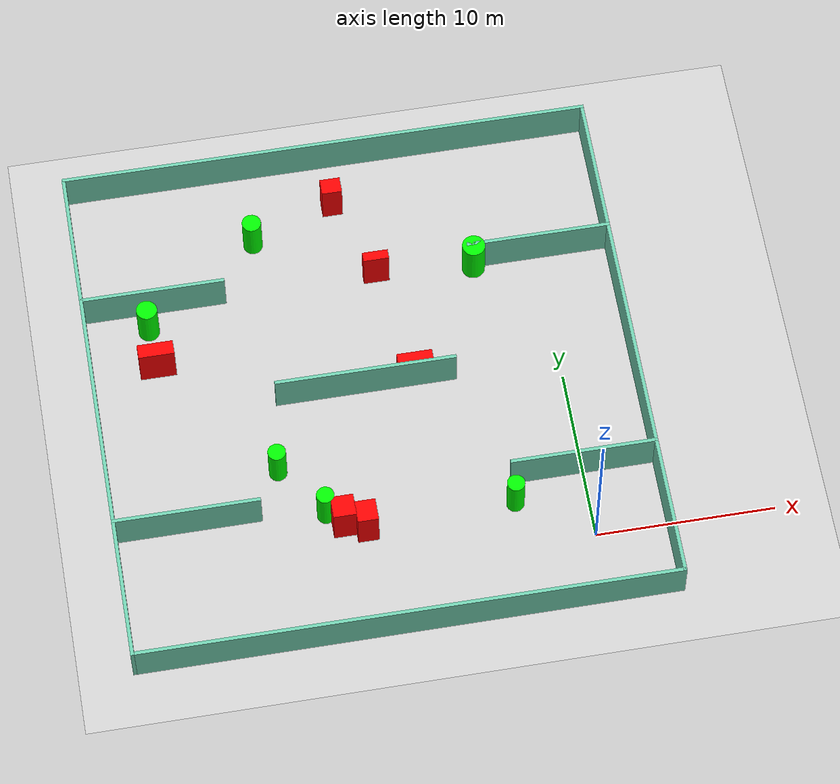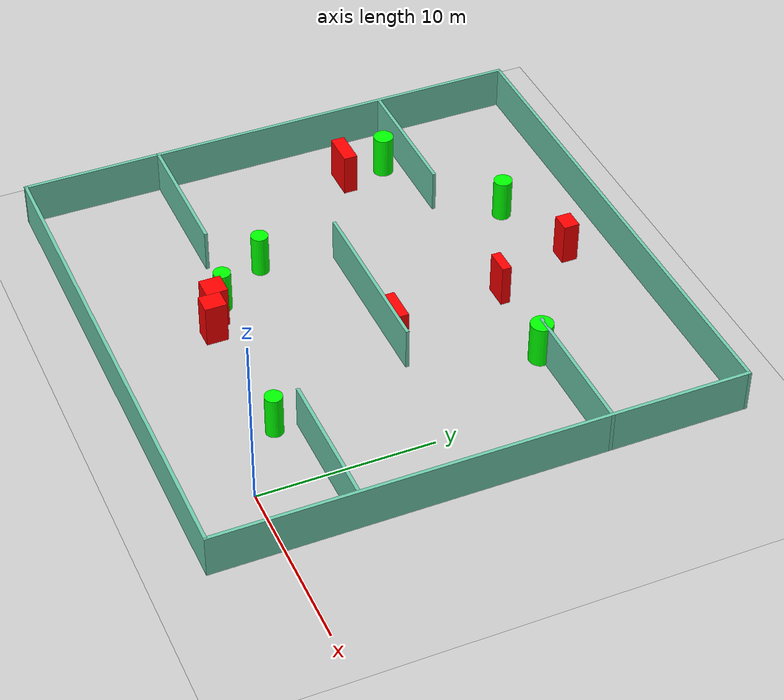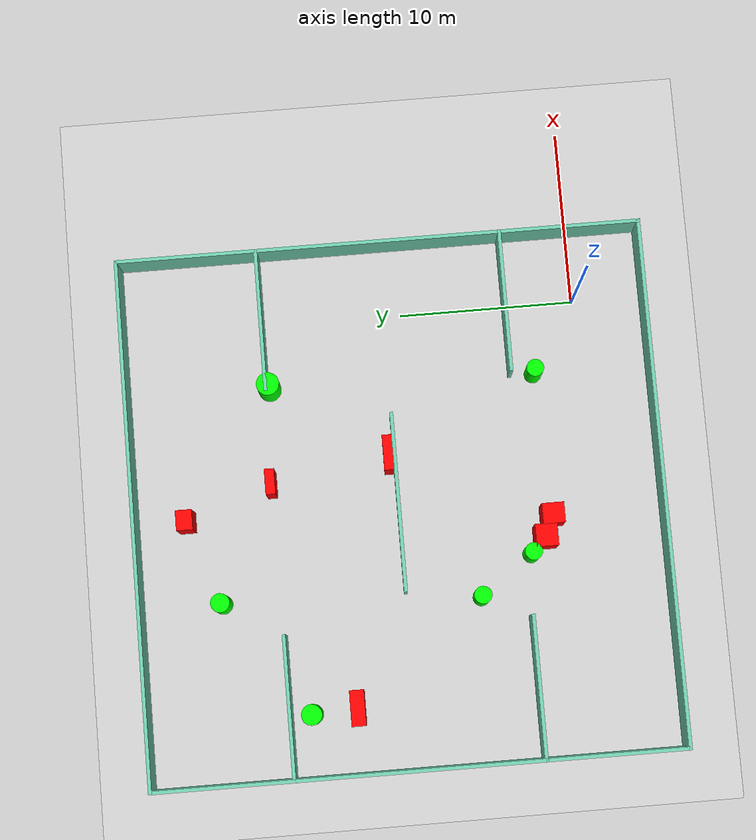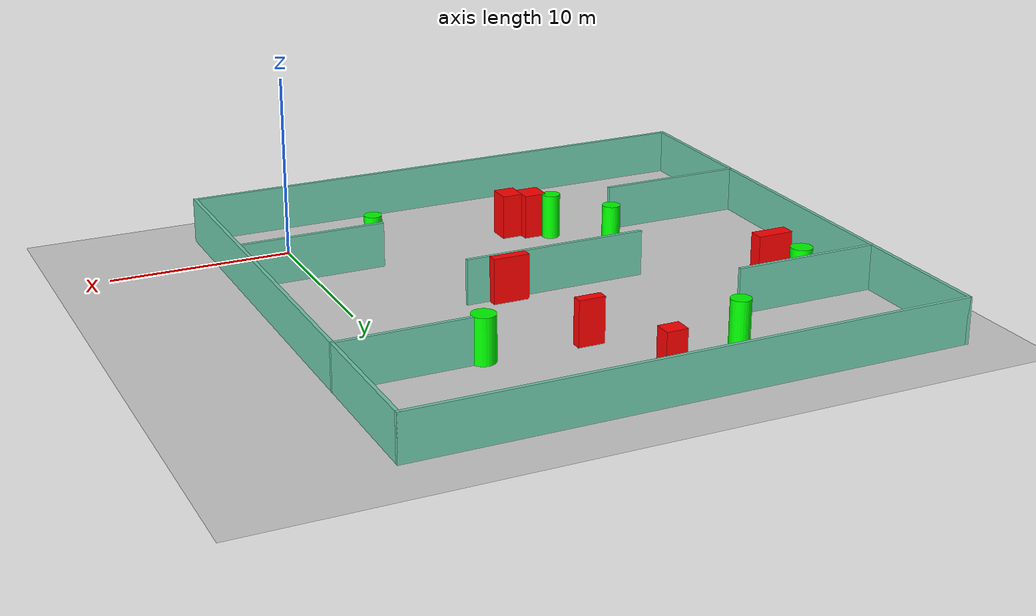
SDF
<sdf version="1.7">
 <world name="default">
  <light name="sun" type="directional">
   <pose>0 0 10 0 -0 0</pose>
   <diffuse>0.8 0.8 0.8 1</diffuse>
   <specular>0.2 0.2 0.2 1</specular>
   <attenuation>
    <range>1000</range>
    <constant>0.9</constant>
    <linear>0.01</linear>
    <quadratic>0.001</quadratic>
   </attenuation>
   <direction>-0.5 0.1 -0.9</direction>
   <spot><inner_angle>0</inner_angle><outer_angle>0</outer_angle><falloff>0</falloff></spot>
  </light>
  <model name="ground_plane">
   <static>1</static>
   <link name="link">
    <collision name="collision">
     <geometry><plane><normal>0 0 1</normal><size>100 100</size></plane></geometry>
     <surface>
      <contact><collide_bitmask>65535</collide_bitmask></contact>
      <friction><ode><mu>100</mu><mu2>50</mu2></ode></friction>
     </surface>
    </collision>
    <visual name="visual">
     <cast_shadows>0</cast_shadows>
     <geometry><plane><normal>0 0 1</normal><size>100 100</size></plane></geometry>
     <material>
      <script><uri>file://media/materials/scripts/gazebo.material</uri><name>Gazebo/Grey</name></script>
     </material>
    </visual>
   </link>
  </model>
  <gravity>0 0 -9.8</gravity>
  <magnetic_field>6e-06 2.3e-05 -4.2e-05</magnetic_field>
  <atmosphere type="adiabatic"/>
  <physics type="ode">
   <max_step_size>0.001</max_step_size>
   <real_time_factor>1</real_time_factor>
   <real_time_update_rate>1000</real_time_update_rate>
  </physics>
  <scene><ambient>0.4 0.4 0.4 1</ambient><background>0.7 0.7 0.7 1</background><shadows>1</shadows></scene>
  <spherical_coordinates>
   <surface_model>EARTH_WGS84</surface_model>
   <latitude_deg>0</latitude_deg>
   <longitude_deg>0</longitude_deg>
   <elevation>0</elevation>
   <heading_deg>0</heading_deg>
  </spherical_coordinates>
  <model name="my_base_walls">
   <link name="Wall_10">
    <collision name="Wall_10_Collision">
     <geometry><box><size>8.2 0.2 2.5</size></box></geometry>
     <pose>0 0 1.25 0 -0 0</pose>
    </collision>
    <visual name="Wall_10_Visual">
     <pose>0 0 1.25 0 -0 0</pose>
     <geometry><box><size>8.2 0.2 2.5</size></box></geometry>
     <material>
      <script><uri>file://media/materials/scripts/gazebo.material</uri><name>Gazebo/Grey</name></script>
      <ambient>0.435294 0.796078 0.67451 1</ambient>
     </material>
     <meta><layer>0</layer></meta>
    </visual>
    <pose>-11 -7 0 0 -0 0</pose>
   </link>
   <link name="Wall_12">
    <collision name="Wall_12_Collision">
     <geometry><box><size>8.2 0.2 2.5</size></box></geometry>
     <pose>0 0 1.25 0 -0 0</pose>
    </collision>
    <visual name="Wall_12_Visual">
     <pose>0 0 1.25 0 -0 0</pose>
     <geometry><box><size>8.2 0.2 2.5</size></box></geometry>
     <material>
      <script><uri>file://media/materials/scripts/gazebo.material</uri><name>Gazebo/Grey</name></script>
      <ambient>0.435294 0.796078 0.67451 1</ambient>
     </material>
     <meta><layer>0</layer></meta>
    </visual>
    <pose>-11 7 0 0 -0 0</pose>
   </link>
   <link name="Wall_14">
    <collision name="Wall_14_Collision">
     <geometry><box><size>8.2 0.2 2.5</size></box></geometry>
     <pose>0 0 1.25 0 -0 0</pose>
    </collision>
    <visual name="Wall_14_Visual">
     <pose>0 0 1.25 0 -0 0</pose>
     <geometry><box><size>8.2 0.2 2.5</size></box></geometry>
     <material>
      <script><uri>file://media/materials/scripts/gazebo.material</uri><name>Gazebo/Grey</name></script>
      <ambient>0.435294 0.796078 0.67451 1</ambient>
     </material>
     <meta><layer>0</layer></meta>
    </visual>
    <pose>11 7 0 0 -0 3.14159</pose>
   </link>
   <link name="Wall_16">
    <collision name="Wall_16_Collision">
     <geometry><box><size>10.2 0.2 2.5</size></box></geometry>
     <pose>0 0 1.25 0 -0 0</pose>
    </collision>
    <visual name="Wall_16_Visual">
     <pose>0 0 1.25 0 -0 0</pose>
     <geometry><box><size>10.2 0.2 2.5</size></box></geometry>
     <material>
      <script><uri>file://media/materials/scripts/gazebo.material</uri><name>Gazebo/Grey</name></script>
      <ambient>0.435294 0.796078 0.67451 1</ambient>
     </material>
     <meta><layer>0</layer></meta>
    </visual>
    <pose>0 0 0 0 -0 3.14159</pose>
   </link>
   <link name="Wall_2">
    <collision name="Wall_2_Collision">
     <geometry><box><size>30.2 0.2 2.5</size></box></geometry>
     <pose>0 0 1.25 0 -0 0</pose>
    </collision>
    <visual name="Wall_2_Visual">
     <pose>0 0 1.25 0 -0 0</pose>
     <geometry><box><size>30.2 0.2 2.5</size></box></geometry>
     <material>
      <script><uri>file://media/materials/scripts/gazebo.material</uri><name>Gazebo/Grey</name></script>
      <ambient>0.435294 0.796078 0.67451 1</ambient>
     </material>
     <meta><layer>0</layer></meta>
    </visual>
    <pose>0 -15 0 0 -0 3.14159</pose>
   </link>
   <link name="Wall_3">
    <collision name="Wall_3_Collision">
     <geometry><box><size>30.2 0.2 2.5</size></box></geometry>
     <pose>0 0 1.25 0 -0 0</pose>
    </collision>
    <visual name="Wall_3_Visual">
     <pose>0 0 1.25 0 -0 0</pose>
     <geometry><box><size>30.2 0.2 2.5</size></box></geometry>
     <material>
      <script><uri>file://media/materials/scripts/gazebo.material</uri><name>Gazebo/Grey</name></script>
      <ambient>0.435294 0.796078 0.67451 1</ambient>
     </material>
     <meta><layer>0</layer></meta>
    </visual>
    <pose>-15 0 0 0 -0 1.5708</pose>
   </link>
   <link name="Wall_4">
    <collision name="Wall_4_Collision">
     <geometry><box><size>30.2 0.2 2.5</size></box></geometry>
     <pose>0 0 1.25 0 -0 0</pose>
    </collision>
    <visual name="Wall_4_Visual">
     <pose>0 0 1.25 0 -0 0</pose>
     <geometry><box><size>30.2 0.2 2.5</size></box></geometry>
     <material>
      <script><uri>file://media/materials/scripts/gazebo.material</uri><name>Gazebo/Grey</name></script>
      <ambient>0.435294 0.796078 0.67451 1</ambient>
     </material>
     <meta><layer>0</layer></meta>
    </visual>
    <pose>0 15 0 0 -0 0</pose>
   </link>
   <link name="Wall_6">
    <collision name="Wall_6_Collision">
     <geometry><box><size>30.2 0.2 2.5</size></box></geometry>
     <pose>0 0 1.25 0 -0 0</pose>
    </collision>
    <visual name="Wall_6_Visual">
     <pose>0 0 1.25 0 -0 0</pose>
     <geometry><box><size>30.2 0.2 2.5</size></box></geometry>
     <material>
      <script><uri>file://media/materials/scripts/gazebo.material</uri><name>Gazebo/Grey</name></script>
      <ambient>0.435294 0.796078 0.67451 1</ambient>
     </material>
     <meta><layer>0</layer></meta>
    </visual>
    <pose>15 0 0 0 -0 1.5708</pose>
   </link>
   <link name="Wall_8">
    <collision name="Wall_8_Collision">
     <geometry><box><size>8.2 0.2 2.5</size></box></geometry>
     <pose>0 0 1.25 0 -0 0</pose>
    </collision>
    <visual name="Wall_8_Visual">
     <pose>0 0 1.25 0 -0 0</pose>
     <geometry><box><size>8.2 0.2 2.5</size></box></geometry>
     <material>
      <script><uri>file://media/materials/scripts/gazebo.material</uri><name>Gazebo/Grey</name></script>
      <ambient>0.435294 0.796078 0.67451 1</ambient>
     </material>
     <meta><layer>0</layer></meta>
    </visual>
    <pose>11 -7 0 0 -0 3.14159</pose>
   </link>
   <static>1</static>
   <pose>-11 11 0 0 -0 0</pose>
  </model>
  <model name="cylinder1">
   <static>1</static>
   <link name="link">
    <inertial>
     <mass>1</mass>
     <inertia><ixx>0.5</ixx><ixy>0</ixy><ixz>0</ixz><iyy>0.5</iyy><iyz>0</iyz><izz>1</izz></inertia>
    </inertial>
    <collision name="collision">
     <geometry><cylinder><radius>0.5887017556690679</radius><length>2.5</length></cylinder></geometry>
    </collision>
    <visual name="visual">
     <geometry><cylinder><radius>0.5887017556690679</radius><length>2.5</length></cylinder></geometry>
     <material>
      <ambient>0 1 0 1</ambient>
      <diffuse>0 1 0 1</diffuse>
      <specular>0.1 0.1 0.1 1</specular>
      <emissive>0 0 0 0</emissive>
     </material>
    </visual>
   </link>
   <pose>-22.45757264476327 16.768235837421482 1.25 0 0 0</pose>
  </model>
  <model name="cylinder2">
   <static>1</static>
   <link name="link">
    <inertial>
     <mass>1</mass>
     <inertia><ixx>0.5</ixx><ixy>0</ixy><ixz>0</ixz><iyy>0.5</iyy><iyz>0</iyz><izz>1</izz></inertia>
    </inertial>
    <collision name="collision">
     <geometry><cylinder><radius>0.50276789608958</radius><length>2.5</length></cylinder></geometry>
    </collision>
    <visual name="visual">
     <geometry><cylinder><radius>0.50276789608958</radius><length>2.5</length></cylinder></geometry>
     <material>
      <ambient>0 1 0 1</ambient>
      <diffuse>0 1 0 1</diffuse>
      <specular>0.1 0.1 0.1 1</specular>
      <emissive>0 0 0 0</emissive>
     </material>
    </visual>
   </link>
   <pose>-16.620995335261885 6.698448272050893 1.25 0 0 0</pose>
  </model>
  <model name="cylinder3">
   <static>1</static>
   <link name="link">
    <inertial>
     <mass>1</mass>
     <inertia><ixx>0.5</ixx><ixy>0</ixy><ixz>0</ixz><iyy>0.5</iyy><iyz>0</iyz><izz>1</izz></inertia>
    </inertial>
    <collision name="collision">
     <geometry><cylinder><radius>0.6517312632671698</radius><length>2.5</length></cylinder></geometry>
    </collision>
    <visual name="visual">
     <geometry><cylinder><radius>0.6517312632671698</radius><length>2.5</length></cylinder></geometry>
     <material>
      <ambient>0 1 0 1</ambient>
      <diffuse>0 1 0 1</diffuse>
      <specular>0.1 0.1 0.1 1</specular>
      <emissive>0 0 0 0</emissive>
     </material>
    </visual>
   </link>
   <pose>-3.723268702406756 17.8545900118658 1.25 0 0 0</pose>
  </model>
  <model name="cylinder4">
   <static>1</static>
   <link name="link">
    <inertial>
     <mass>1</mass>
     <inertia><ixx>0.5</ixx><ixy>0</ixy><ixz>0</ixz><iyy>0.5</iyy><iyz>0</iyz><izz>1</izz></inertia>
    </inertial>
    <collision name="collision">
     <geometry><cylinder><radius>0.5416382544300693</radius><length>2.5</length></cylinder></geometry>
    </collision>
    <visual name="visual">
     <geometry><cylinder><radius>0.5416382544300693</radius><length>2.5</length></cylinder></geometry>
     <material>
      <ambient>0 1 0 1</ambient>
      <diffuse>0 1 0 1</diffuse>
      <specular>0.1 0.1 0.1 1</specular>
      <emissive>0 0 0 0</emissive>
     </material>
    </visual>
   </link>
   <pose>-15.862377980061478 21.407381121257973 1.25 0 0 0</pose>
  </model>
  <model name="cylinder5">
   <static>1</static>
   <link name="link">
    <inertial>
     <mass>1</mass>
     <inertia><ixx>0.5</ixx><ixy>0</ixy><ixz>0</ixz><iyy>0.5</iyy><iyz>0</iyz><izz>1</izz></inertia>
    </inertial>
    <collision name="collision">
     <geometry><cylinder><radius>0.4985575306694824</radius><length>2.5</length></cylinder></geometry>
    </collision>
    <visual name="visual">
     <geometry><cylinder><radius>0.4985575306694824</radius><length>2.5</length></cylinder></geometry>
     <material>
      <ambient>0 1 0 1</ambient>
      <diffuse>0 1 0 1</diffuse>
      <specular>0.1 0.1 0.1 1</specular>
      <emissive>0 0 0 0</emissive>
     </material>
    </visual>
   </link>
   <pose>-14.41170396140367 3.651329123594917 1.25 0 0 0</pose>
  </model>
  <model name="cylinder6">
   <static>1</static>
   <link name="link">
    <inertial>
     <mass>1</mass>
     <inertia><ixx>0.5</ixx><ixy>0</ixy><ixz>0</ixz><iyy>0.5</iyy><iyz>0</iyz><izz>1</izz></inertia>
    </inertial>
    <collision name="collision">
     <geometry><cylinder><radius>0.49491539519113215</radius><length>2.5</length></cylinder></geometry>
    </collision>
    <visual name="visual">
     <geometry><cylinder><radius>0.49491539519113215</radius><length>2.5</length></cylinder></geometry>
     <material>
      <ambient>0 1 0 1</ambient>
      <diffuse>0 1 0 1</diffuse>
      <specular>0.1 0.1 0.1 1</specular>
      <emissive>0 0 0 0</emissive>
     </material>
    </visual>
   </link>
   <pose>-4.039442408213713 2.6397085166022407 1.25 0 0 0</pose>
  </model>
  <model name="box1">
   <static>1</static>
   <link name="link">
    <inertial>
     <mass>1</mass>
     <inertia><ixx>0.083</ixx><ixy>0</ixy><ixz>0</ixz><iyy>0.083</iyy><iyz>0</iyz><izz>0.083</izz></inertia>
    </inertial>
    <collision name="collision">
     <geometry><box><size>1.1477744429842316 0.9283589141550818 2.5</size></box></geometry>
    </collision>
    <visual name="visual">
     <geometry><box><size>1.1477744429842316 0.9283589141550818 2.5</size></box></geometry>
     <material>
      <ambient>1 0 0 1</ambient>
      <diffuse>1 0 0 1</diffuse>
      <specular>0.1 0.1 0.1 1</specular>
      <emissive>0 0 0 0</emissive>
     </material>
    </visual>
    <sensor name="my_contact" type="contact">
     <contact><collision>box_collision</collision><topic>__default_topic__</topic></contact>
    </sensor>
   </link>
   <pose>-11.061152053571195 23.105313741312635 1.25 0 0 0</pose>
  </model>
  <model name="box2">
   <static>1</static>
   <link name="link">
    <inertial>
     <mass>1</mass>
     <inertia><ixx>0.083</ixx><ixy>0</ixy><ixz>0</ixz><iyy>0.083</iyy><iyz>0</iyz><izz>0.083</izz></inertia>
    </inertial>
    <collision name="collision">
     <geometry><box><size>1.9994121654644492 0.551451345494585 2.5</size></box></geometry>
    </collision>
    <visual name="visual">
     <geometry><box><size>1.9994121654644492 0.551451345494585 2.5</size></box></geometry>
     <material>
      <ambient>1 0 0 1</ambient>
      <diffuse>1 0 0 1</diffuse>
      <specular>0.1 0.1 0.1 1</specular>
      <emissive>0 0 0 0</emissive>
     </material>
    </visual>
    <sensor name="my_contact" type="contact">
     <contact><collision>box_collision</collision><topic>__default_topic__</topic></contact>
    </sensor>
   </link>
   <pose>-8.170692592609175 11.36497144501488 1.25 0 0 0</pose>
  </model>
  <model name="box3">
   <static>1</static>
   <link name="link">
    <inertial>
     <mass>1</mass>
     <inertia><ixx>0.083</ixx><ixy>0</ixy><ixz>0</ixz><iyy>0.083</iyy><iyz>0</iyz><izz>0.083</izz></inertia>
    </inertial>
    <collision name="collision">
     <geometry><box><size>1.2750563349762825 1.2563382112909665 2.5</size></box></geometry>
    </collision>
    <visual name="visual">
     <geometry><box><size>1.2750563349762825 1.2563382112909665 2.5</size></box></geometry>
     <material>
      <ambient>1 0 0 1</ambient>
      <diffuse>1 0 0 1</diffuse>
      <specular>0.1 0.1 0.1 1</specular>
      <emissive>0 0 0 0</emissive>
     </material>
    </visual>
    <sensor name="my_contact" type="contact">
     <contact><collision>box_collision</collision><topic>__default_topic__</topic></contact>
    </sensor>
   </link>
   <pose>-13.544996868862054 2.838020098197017 1.25 0 0 0</pose>
  </model>
  <model name="box4">
   <static>1</static>
   <link name="link">
    <inertial>
     <mass>1</mass>
     <inertia><ixx>0.083</ixx><ixy>0</ixy><ixz>0</ixz><iyy>0.083</iyy><iyz>0</iyz><izz>0.083</izz></inertia>
    </inertial>
    <collision name="collision">
     <geometry><box><size>1.1607708171552629 1.2586276623115409 2.5</size></box></geometry>
    </collision>
    <visual name="visual">
     <geometry><box><size>1.1607708171552629 1.2586276623115409 2.5</size></box></geometry>
     <material>
      <ambient>1 0 0 1</ambient>
      <diffuse>1 0 0 1</diffuse>
      <specular>0.1 0.1 0.1 1</specular>
      <emissive>0 0 0 0</emissive>
     </material>
    </visual>
    <sensor name="my_contact" type="contact">
     <contact><collision>box_collision</collision><topic>__default_topic__</topic></contact>
    </sensor>
   </link>
   <pose>-12.344984674869504 2.3512347838834353 1.25 0 0 0</pose>
  </model>
  <model name="box5">
   <static>1</static>
   <link name="link">
    <inertial>
     <mass>1</mass>
     <inertia><ixx>0.083</ixx><ixy>0</ixy><ixz>0</ixz><iyy>0.083</iyy><iyz>0</iyz><izz>0.083</izz></inertia>
    </inertial>
    <collision name="collision">
     <geometry><box><size>1.4535093223400042 0.5518298493057661 2.5</size></box></geometry>
    </collision>
    <visual name="visual">
     <geometry><box><size>1.4535093223400042 0.5518298493057661 2.5</size></box></geometry>
     <material>
      <ambient>1 0 0 1</ambient>
      <diffuse>1 0 0 1</diffuse>
      <specular>0.1 0.1 0.1 1</specular>
      <emissive>0 0 0 0</emissive>
     </material>
    </visual>
    <sensor name="my_contact" type="contact">
     <contact><collision>box_collision</collision><topic>__default_topic__</topic></contact>
    </sensor>
   </link>
   <pose>-9.286903461825526 18.136970966292555 1.25 0 0 0</pose>
  </model>
  <model name="box6">
   <static>1</static>
   <link name="link">
    <inertial>
     <mass>1</mass>
     <inertia><ixx>0.083</ixx><ixy>0</ixy><ixz>0</ixz><iyy>0.083</iyy><iyz>0</iyz><izz>0.083</izz></inertia>
    </inertial>
    <collision name="collision">
     <geometry><box><size>2.0156339616909853 0.8152996024513262 2.5</size></box></geometry>
    </collision>
    <visual name="visual">
     <geometry><box><size>2.0156339616909853 0.8152996024513262 2.5</size></box></geometry>
     <material>
      <ambient>1 0 0 1</ambient>
      <diffuse>1 0 0 1</diffuse>
      <specular>0.1 0.1 0.1 1</specular>
      <emissive>0 0 0 0</emissive>
     </material>
    </visual>
    <sensor name="my_contact" type="contact">
     <contact><collision>box_collision</collision><topic>__default_topic__</topic></contact>
    </sensor>
   </link>
   <pose>-22.29952422254413 14.194025692652918 1.25 0 0 0</pose>
  </model>
 </world>
</sdf>
